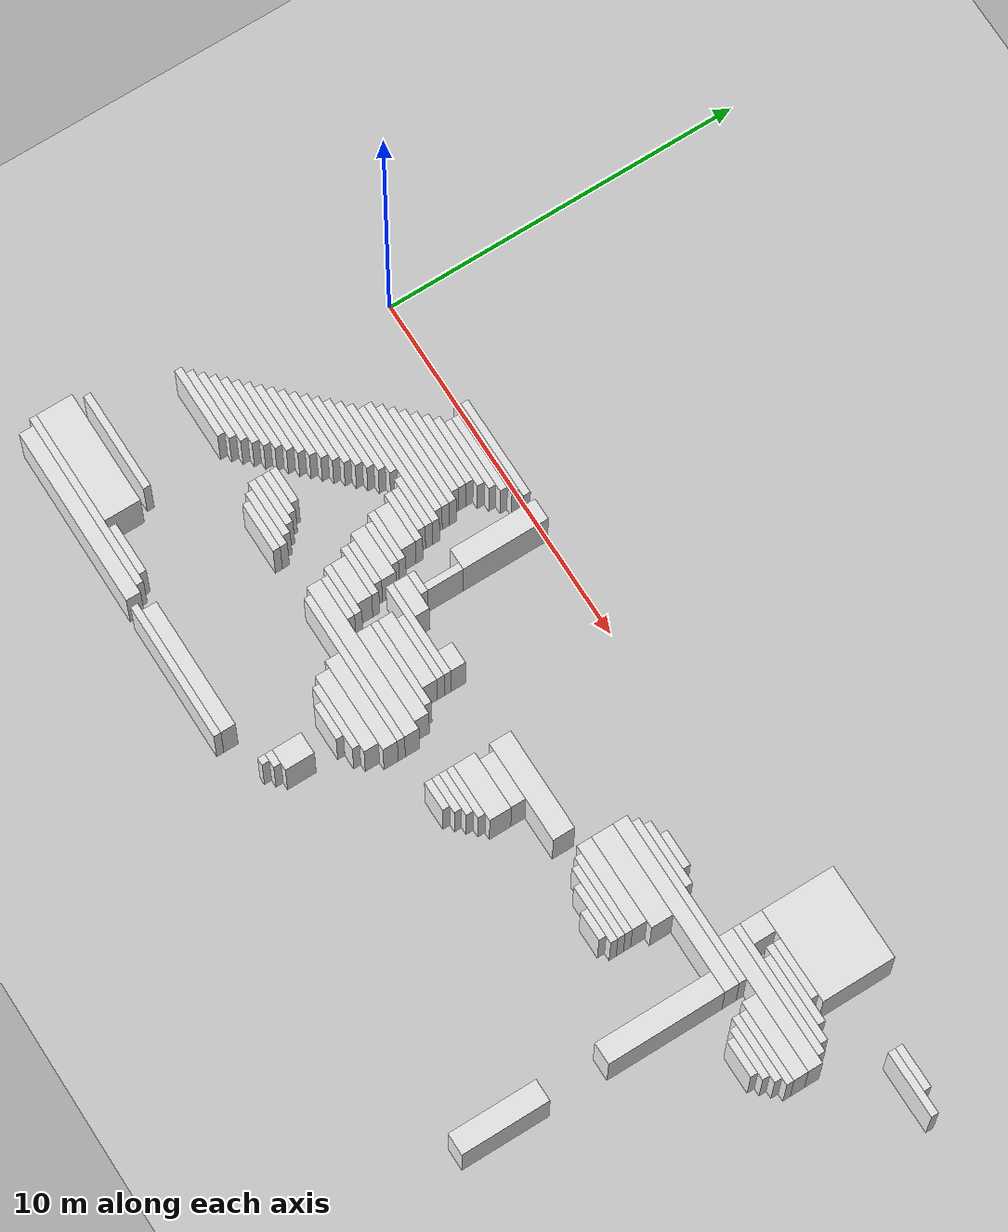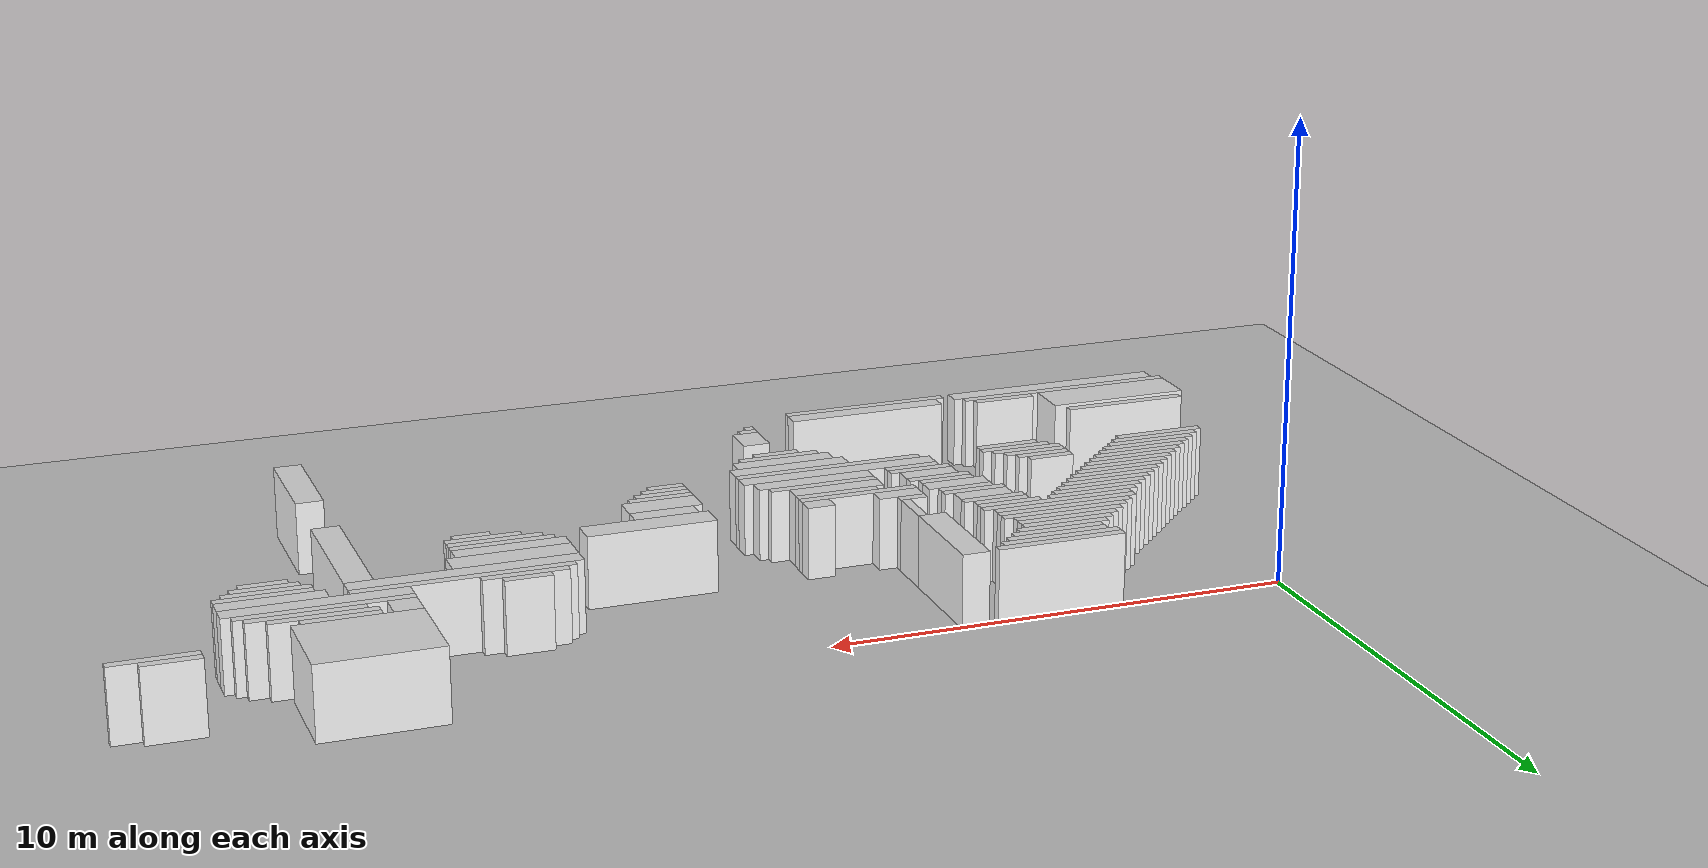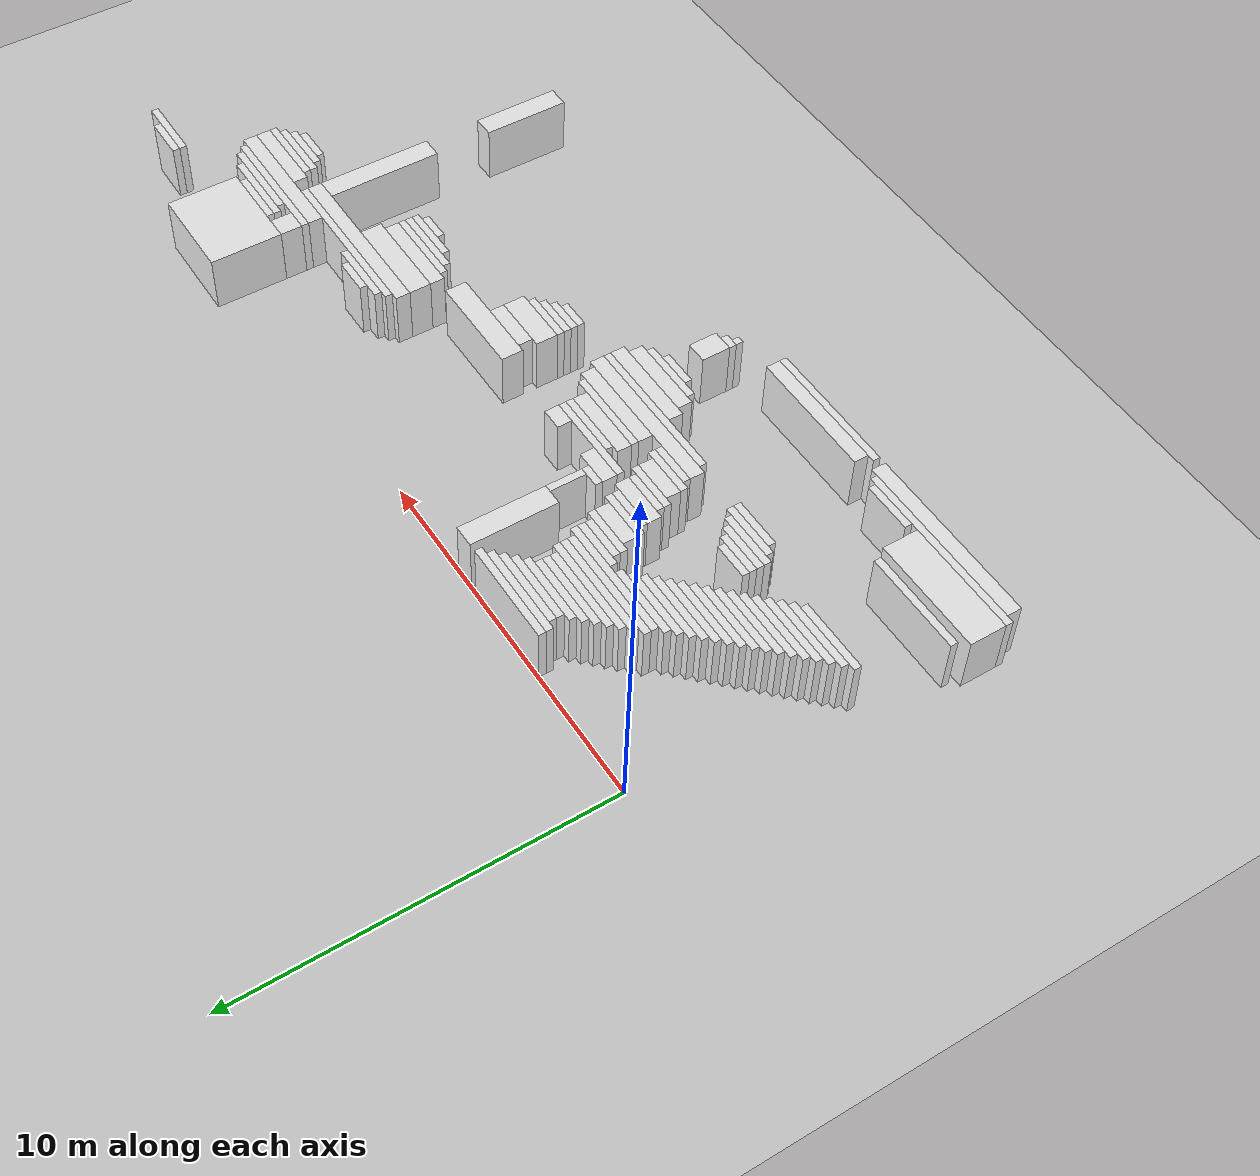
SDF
<sdf version="1.7">
 <world name="default">
  <model name="ground_plane">
   <static>1</static>
   <link name="link">
    <collision name="collision">
     <geometry><plane><normal>0 0 1</normal><size>120 120</size></plane></geometry>
    </collision>
    <visual name="visual">
     <geometry><plane><normal>0 0 1</normal><size>120 120</size></plane></geometry>
     <material>
      <script><uri>file://media/materials/scripts/gazebo.material</uri><name>Gazebo/Grey</name></script>
     </material>
    </visual>
   </link>
  </model>
  <model name="random_complex_02_model">
   <static>1</static>
   <link name="obs_1975">
    <pose>5.0000 -0.1000 0.8000 0 0 0</pose>
    <collision name="obs_1975_col"><geometry><box><size>2.8000 0.2000 1.6000</size></box></geometry></collision>
    <visual name="obs_1975_vis">
     <geometry><box><size>2.8000 0.2000 1.6000</size></box></geometry>
     <material>
      <script><uri>file://media/materials/scripts/gazebo.material</uri><name>Gazebo/White</name></script>
     </material>
    </visual>
   </link>
   <link name="obs_1976">
    <pose>23.0000 -0.1000 0.8000 0 0 0</pose>
    <collision name="obs_1976_col"><geometry><box><size>1.2000 0.2000 1.6000</size></box></geometry></collision>
    <visual name="obs_1976_vis">
     <geometry><box><size>1.2000 0.2000 1.6000</size></box></geometry>
     <material>
      <script><uri>file://media/materials/scripts/gazebo.material</uri><name>Gazebo/White</name></script>
     </material>
    </visual>
   </link>
   <link name="obs_1982">
    <pose>4.9000 -0.3000 0.8000 0 0 0</pose>
    <collision name="obs_1982_col"><geometry><box><size>2.6000 0.2000 1.6000</size></box></geometry></collision>
    <visual name="obs_1982_vis">
     <geometry><box><size>2.6000 0.2000 1.6000</size></box></geometry>
     <material>
      <script><uri>file://media/materials/scripts/gazebo.material</uri><name>Gazebo/White</name></script>
     </material>
    </visual>
   </link>
   <link name="obs_1983">
    <pose>23.3000 -0.3000 0.8000 0 0 0</pose>
    <collision name="obs_1983_col"><geometry><box><size>1.8000 0.2000 1.6000</size></box></geometry></collision>
    <visual name="obs_1983_vis">
     <geometry><box><size>1.8000 0.2000 1.6000</size></box></geometry>
     <material>
      <script><uri>file://media/materials/scripts/gazebo.material</uri><name>Gazebo/White</name></script>
     </material>
    </visual>
   </link>
   <link name="obs_1990">
    <pose>4.9000 -0.5000 0.8000 0 0 0</pose>
    <collision name="obs_1990_col"><geometry><box><size>2.2000 0.2000 1.6000</size></box></geometry></collision>
    <visual name="obs_1990_vis">
     <geometry><box><size>2.2000 0.2000 1.6000</size></box></geometry>
     <material>
      <script><uri>file://media/materials/scripts/gazebo.material</uri><name>Gazebo/White</name></script>
     </material>
    </visual>
   </link>
   <link name="obs_1998">
    <pose>4.8000 -0.7000 0.8000 0 0 0</pose>
    <collision name="obs_1998_col"><geometry><box><size>2.0000 0.2000 1.6000</size></box></geometry></collision>
    <visual name="obs_1998_vis">
     <geometry><box><size>2.0000 0.2000 1.6000</size></box></geometry>
     <material>
      <script><uri>file://media/materials/scripts/gazebo.material</uri><name>Gazebo/White</name></script>
     </material>
    </visual>
   </link>
   <link name="obs_2003">
    <pose>19.3000 0.0000 0.8000 0 0 0</pose>
    <collision name="obs_2003_col"><geometry><box><size>2.6000 2.0000 1.6000</size></box></geometry></collision>
    <visual name="obs_2003_vis">
     <geometry><box><size>2.6000 2.0000 1.6000</size></box></geometry>
     <material>
      <script><uri>file://media/materials/scripts/gazebo.material</uri><name>Gazebo/White</name></script>
     </material>
    </visual>
   </link>
   <link name="obs_2010">
    <pose>4.6000 -0.9000 0.8000 0 0 0</pose>
    <collision name="obs_2010_col"><geometry><box><size>2.0000 0.2000 1.6000</size></box></geometry></collision>
    <visual name="obs_2010_vis">
     <geometry><box><size>2.0000 0.2000 1.6000</size></box></geometry>
     <material>
      <script><uri>file://media/materials/scripts/gazebo.material</uri><name>Gazebo/White</name></script>
     </material>
    </visual>
   </link>
   <link name="obs_2018">
    <pose>4.4000 -1.1000 0.8000 0 0 0</pose>
    <collision name="obs_2018_col"><geometry><box><size>2.0000 0.2000 1.6000</size></box></geometry></collision>
    <visual name="obs_2018_vis">
     <geometry><box><size>2.0000 0.2000 1.6000</size></box></geometry>
     <material>
      <script><uri>file://media/materials/scripts/gazebo.material</uri><name>Gazebo/White</name></script>
     </material>
    </visual>
   </link>
   <link name="obs_2019">
    <pose>19.6000 -1.1000 0.8000 0 0 0</pose>
    <collision name="obs_2019_col"><geometry><box><size>1.6000 0.2000 1.6000</size></box></geometry></collision>
    <visual name="obs_2019_vis">
     <geometry><box><size>1.6000 0.2000 1.6000</size></box></geometry>
     <material>
      <script><uri>file://media/materials/scripts/gazebo.material</uri><name>Gazebo/White</name></script>
     </material>
    </visual>
   </link>
   <link name="obs_2029">
    <pose>4.3000 -1.3000 0.8000 0 0 0</pose>
    <collision name="obs_2029_col"><geometry><box><size>2.2000 0.2000 1.6000</size></box></geometry></collision>
    <visual name="obs_2029_vis">
     <geometry><box><size>2.2000 0.2000 1.6000</size></box></geometry>
     <material>
      <script><uri>file://media/materials/scripts/gazebo.material</uri><name>Gazebo/White</name></script>
     </material>
    </visual>
   </link>
   <link name="obs_2030">
    <pose>19.9000 -1.3000 0.8000 0 0 0</pose>
    <collision name="obs_2030_col"><geometry><box><size>2.2000 0.2000 1.6000</size></box></geometry></collision>
    <visual name="obs_2030_vis">
     <geometry><box><size>2.2000 0.2000 1.6000</size></box></geometry>
     <material>
      <script><uri>file://media/materials/scripts/gazebo.material</uri><name>Gazebo/White</name></script>
     </material>
    </visual>
   </link>
   <link name="obs_2037">
    <pose>18.3000 -1.3000 0.8000 0 0 0</pose>
    <collision name="obs_2037_col"><geometry><box><size>0.6000 0.6000 1.6000</size></box></geometry></collision>
    <visual name="obs_2037_vis">
     <geometry><box><size>0.6000 0.6000 1.6000</size></box></geometry>
     <material>
      <script><uri>file://media/materials/scripts/gazebo.material</uri><name>Gazebo/White</name></script>
     </material>
    </visual>
   </link>
   <link name="obs_2039">
    <pose>4.2000 -1.5000 0.8000 0 0 0</pose>
    <collision name="obs_2039_col"><geometry><box><size>2.4000 0.2000 1.6000</size></box></geometry></collision>
    <visual name="obs_2039_vis">
     <geometry><box><size>2.4000 0.2000 1.6000</size></box></geometry>
     <material>
      <script><uri>file://media/materials/scripts/gazebo.material</uri><name>Gazebo/White</name></script>
     </material>
    </visual>
   </link>
   <link name="obs_2040">
    <pose>20.2000 -1.5000 0.8000 0 0 0</pose>
    <collision name="obs_2040_col"><geometry><box><size>2.4000 0.2000 1.6000</size></box></geometry></collision>
    <visual name="obs_2040_vis">
     <geometry><box><size>2.4000 0.2000 1.6000</size></box></geometry>
     <material>
      <script><uri>file://media/materials/scripts/gazebo.material</uri><name>Gazebo/White</name></script>
     </material>
    </visual>
   </link>
   <link name="obs_2044">
    <pose>4.2000 -1.7000 0.8000 0 0 0</pose>
    <collision name="obs_2044_col"><geometry><box><size>2.8000 0.2000 1.6000</size></box></geometry></collision>
    <visual name="obs_2044_vis">
     <geometry><box><size>2.8000 0.2000 1.6000</size></box></geometry>
     <material>
      <script><uri>file://media/materials/scripts/gazebo.material</uri><name>Gazebo/White</name></script>
     </material>
    </visual>
   </link>
   <link name="obs_2045">
    <pose>19.8000 -1.7000 0.8000 0 0 0</pose>
    <collision name="obs_2045_col"><geometry><box><size>3.6000 0.2000 1.6000</size></box></geometry></collision>
    <visual name="obs_2045_vis">
     <geometry><box><size>3.6000 0.2000 1.6000</size></box></geometry>
     <material>
      <script><uri>file://media/materials/scripts/gazebo.material</uri><name>Gazebo/White</name></script>
     </material>
    </visual>
   </link>
   <link name="obs_2054">
    <pose>4.1000 -1.9000 0.8000 0 0 0</pose>
    <collision name="obs_2054_col"><geometry><box><size>3.0000 0.2000 1.6000</size></box></geometry></collision>
    <visual name="obs_2054_vis">
     <geometry><box><size>3.0000 0.2000 1.6000</size></box></geometry>
     <material>
      <script><uri>file://media/materials/scripts/gazebo.material</uri><name>Gazebo/White</name></script>
     </material>
    </visual>
   </link>
   <link name="obs_2055">
    <pose>15.7000 -1.9000 0.8000 0 0 0</pose>
    <collision name="obs_2055_col"><geometry><box><size>1.0000 0.2000 1.6000</size></box></geometry></collision>
    <visual name="obs_2055_vis">
     <geometry><box><size>1.0000 0.2000 1.6000</size></box></geometry>
     <material>
      <script><uri>file://media/materials/scripts/gazebo.material</uri><name>Gazebo/White</name></script>
     </material>
    </visual>
   </link>
   <link name="obs_2061">
    <pose>19.9000 -2.0000 0.8000 0 0 0</pose>
    <collision name="obs_2061_col"><geometry><box><size>3.8000 0.4000 1.6000</size></box></geometry></collision>
    <visual name="obs_2061_vis">
     <geometry><box><size>3.8000 0.4000 1.6000</size></box></geometry>
     <material>
      <script><uri>file://media/materials/scripts/gazebo.material</uri><name>Gazebo/White</name></script>
     </material>
    </visual>
   </link>
   <link name="obs_2064">
    <pose>4.0000 -2.1000 0.8000 0 0 0</pose>
    <collision name="obs_2064_col"><geometry><box><size>3.2000 0.2000 1.6000</size></box></geometry></collision>
    <visual name="obs_2064_vis">
     <geometry><box><size>3.2000 0.2000 1.6000</size></box></geometry>
     <material>
      <script><uri>file://media/materials/scripts/gazebo.material</uri><name>Gazebo/White</name></script>
     </material>
    </visual>
   </link>
   <link name="obs_2065">
    <pose>15.7000 -2.1000 0.8000 0 0 0</pose>
    <collision name="obs_2065_col"><geometry><box><size>1.8000 0.2000 1.6000</size></box></geometry></collision>
    <visual name="obs_2065_vis">
     <geometry><box><size>1.8000 0.2000 1.6000</size></box></geometry>
     <material>
      <script><uri>file://media/materials/scripts/gazebo.material</uri><name>Gazebo/White</name></script>
     </material>
    </visual>
   </link>
   <link name="obs_2069">
    <pose>6.9000 -1.2000 0.8000 0 0 0</pose>
    <collision name="obs_2069_col"><geometry><box><size>0.6000 2.4000 1.6000</size></box></geometry></collision>
    <visual name="obs_2069_vis">
     <geometry><box><size>0.6000 2.4000 1.6000</size></box></geometry>
     <material>
      <script><uri>file://media/materials/scripts/gazebo.material</uri><name>Gazebo/White</name></script>
     </material>
    </visual>
   </link>
   <link name="obs_2071">
    <pose>4.1000 -2.3000 0.8000 0 0 0</pose>
    <collision name="obs_2071_col"><geometry><box><size>3.4000 0.2000 1.6000</size></box></geometry></collision>
    <visual name="obs_2071_vis">
     <geometry><box><size>3.4000 0.2000 1.6000</size></box></geometry>
     <material>
      <script><uri>file://media/materials/scripts/gazebo.material</uri><name>Gazebo/White</name></script>
     </material>
    </visual>
   </link>
   <link name="obs_2072">
    <pose>16.9000 -2.3000 0.8000 0 0 0</pose>
    <collision name="obs_2072_col"><geometry><box><size>4.6000 0.2000 1.6000</size></box></geometry></collision>
    <visual name="obs_2072_vis">
     <geometry><box><size>4.6000 0.2000 1.6000</size></box></geometry>
     <material>
      <script><uri>file://media/materials/scripts/gazebo.material</uri><name>Gazebo/White</name></script>
     </material>
    </visual>
   </link>
   <link name="obs_2076">
    <pose>20.7000 -2.4000 0.8000 0 0 0</pose>
    <collision name="obs_2076_col"><geometry><box><size>2.2000 0.4000 1.6000</size></box></geometry></collision>
    <visual name="obs_2076_vis">
     <geometry><box><size>2.2000 0.4000 1.6000</size></box></geometry>
     <material>
      <script><uri>file://media/materials/scripts/gazebo.material</uri><name>Gazebo/White</name></script>
     </material>
    </visual>
   </link>
   <link name="obs_2079">
    <pose>3.2000 -2.5000 0.8000 0 0 0</pose>
    <collision name="obs_2079_col"><geometry><box><size>2.0000 0.2000 1.6000</size></box></geometry></collision>
    <visual name="obs_2079_vis">
     <geometry><box><size>2.0000 0.2000 1.6000</size></box></geometry>
     <material>
      <script><uri>file://media/materials/scripts/gazebo.material</uri><name>Gazebo/White</name></script>
     </material>
    </visual>
   </link>
   <link name="obs_2080">
    <pose>5.1000 -2.5000 0.8000 0 0 0</pose>
    <collision name="obs_2080_col"><geometry><box><size>1.4000 0.2000 1.6000</size></box></geometry></collision>
    <visual name="obs_2080_vis">
     <geometry><box><size>1.4000 0.2000 1.6000</size></box></geometry>
     <material>
      <script><uri>file://media/materials/scripts/gazebo.material</uri><name>Gazebo/White</name></script>
     </material>
    </visual>
   </link>
   <link name="obs_2084">
    <pose>16.8000 -2.6000 0.8000 0 0 0</pose>
    <collision name="obs_2084_col"><geometry><box><size>4.8000 0.4000 1.6000</size></box></geometry></collision>
    <visual name="obs_2084_vis">
     <geometry><box><size>4.8000 0.4000 1.6000</size></box></geometry>
     <material>
      <script><uri>file://media/materials/scripts/gazebo.material</uri><name>Gazebo/White</name></script>
     </material>
    </visual>
   </link>
   <link name="obs_2087">
    <pose>3.0000 -2.7000 0.8000 0 0 0</pose>
    <collision name="obs_2087_col"><geometry><box><size>2.0000 0.2000 1.6000</size></box></geometry></collision>
    <visual name="obs_2087_vis">
     <geometry><box><size>2.0000 0.2000 1.6000</size></box></geometry>
     <material>
      <script><uri>file://media/materials/scripts/gazebo.material</uri><name>Gazebo/White</name></script>
     </material>
    </visual>
   </link>
   <link name="obs_2088">
    <pose>5.2000 -2.7000 0.8000 0 0 0</pose>
    <collision name="obs_2088_col"><geometry><box><size>1.2000 0.2000 1.6000</size></box></geometry></collision>
    <visual name="obs_2088_vis">
     <geometry><box><size>1.2000 0.2000 1.6000</size></box></geometry>
     <material>
      <script><uri>file://media/materials/scripts/gazebo.material</uri><name>Gazebo/White</name></script>
     </material>
    </visual>
   </link>
   <link name="obs_2089">
    <pose>20.8000 -2.7000 0.8000 0 0 0</pose>
    <collision name="obs_2089_col"><geometry><box><size>2.0000 0.2000 1.6000</size></box></geometry></collision>
    <visual name="obs_2089_vis">
     <geometry><box><size>2.0000 0.2000 1.6000</size></box></geometry>
     <material>
      <script><uri>file://media/materials/scripts/gazebo.material</uri><name>Gazebo/White</name></script>
     </material>
    </visual>
   </link>
   <link name="obs_2092">
    <pose>2.8000 -2.9000 0.8000 0 0 0</pose>
    <collision name="obs_2092_col"><geometry><box><size>2.0000 0.2000 1.6000</size></box></geometry></collision>
    <visual name="obs_2092_vis">
     <geometry><box><size>2.0000 0.2000 1.6000</size></box></geometry>
     <material>
      <script><uri>file://media/materials/scripts/gazebo.material</uri><name>Gazebo/White</name></script>
     </material>
    </visual>
   </link>
   <link name="obs_2093">
    <pose>5.3000 -2.9000 0.8000 0 0 0</pose>
    <collision name="obs_2093_col"><geometry><box><size>1.4000 0.2000 1.6000</size></box></geometry></collision>
    <visual name="obs_2093_vis">
     <geometry><box><size>1.4000 0.2000 1.6000</size></box></geometry>
     <material>
      <script><uri>file://media/materials/scripts/gazebo.material</uri><name>Gazebo/White</name></script>
     </material>
    </visual>
   </link>
   <link name="obs_2094">
    <pose>20.7000 -2.9000 0.8000 0 0 0</pose>
    <collision name="obs_2094_col"><geometry><box><size>1.8000 0.2000 1.6000</size></box></geometry></collision>
    <visual name="obs_2094_vis">
     <geometry><box><size>1.8000 0.2000 1.6000</size></box></geometry>
     <material>
      <script><uri>file://media/materials/scripts/gazebo.material</uri><name>Gazebo/White</name></script>
     </material>
    </visual>
   </link>
   <link name="obs_2099">
    <pose>2.6000 -3.1000 0.8000 0 0 0</pose>
    <collision name="obs_2099_col"><geometry><box><size>2.0000 0.2000 1.6000</size></box></geometry></collision>
    <visual name="obs_2099_vis">
     <geometry><box><size>2.0000 0.2000 1.6000</size></box></geometry>
     <material>
      <script><uri>file://media/materials/scripts/gazebo.material</uri><name>Gazebo/White</name></script>
     </material>
    </visual>
   </link>
   <link name="obs_2100">
    <pose>20.7000 -3.1000 0.8000 0 0 0</pose>
    <collision name="obs_2100_col"><geometry><box><size>1.4000 0.2000 1.6000</size></box></geometry></collision>
    <visual name="obs_2100_vis">
     <geometry><box><size>1.4000 0.2000 1.6000</size></box></geometry>
     <material>
      <script><uri>file://media/materials/scripts/gazebo.material</uri><name>Gazebo/White</name></script>
     </material>
    </visual>
   </link>
   <link name="obs_2104">
    <pose>7.1000 -2.9000 0.8000 0 0 0</pose>
    <collision name="obs_2104_col"><geometry><box><size>0.2000 1.0000 1.6000</size></box></geometry></collision>
    <visual name="obs_2104_vis">
     <geometry><box><size>0.2000 1.0000 1.6000</size></box></geometry>
     <material>
      <script><uri>file://media/materials/scripts/gazebo.material</uri><name>Gazebo/White</name></script>
     </material>
    </visual>
   </link>
   <link name="obs_2105">
    <pose>15.7000 -3.1000 0.8000 0 0 0</pose>
    <collision name="obs_2105_col"><geometry><box><size>2.6000 0.6000 1.6000</size></box></geometry></collision>
    <visual name="obs_2105_vis">
     <geometry><box><size>2.6000 0.6000 1.6000</size></box></geometry>
     <material>
      <script><uri>file://media/materials/scripts/gazebo.material</uri><name>Gazebo/White</name></script>
     </material>
    </visual>
   </link>
   <link name="obs_2106">
    <pose>5.4000 -3.2000 0.8000 0 0 0</pose>
    <collision name="obs_2106_col"><geometry><box><size>1.2000 0.4000 1.6000</size></box></geometry></collision>
    <visual name="obs_2106_vis">
     <geometry><box><size>1.2000 0.4000 1.6000</size></box></geometry>
     <material>
      <script><uri>file://media/materials/scripts/gazebo.material</uri><name>Gazebo/White</name></script>
     </material>
    </visual>
   </link>
   <link name="obs_2109">
    <pose>2.4000 -3.3000 0.8000 0 0 0</pose>
    <collision name="obs_2109_col"><geometry><box><size>2.0000 0.2000 1.6000</size></box></geometry></collision>
    <visual name="obs_2109_vis">
     <geometry><box><size>2.0000 0.2000 1.6000</size></box></geometry>
     <material>
      <script><uri>file://media/materials/scripts/gazebo.material</uri><name>Gazebo/White</name></script>
     </material>
    </visual>
   </link>
   <link name="obs_2110">
    <pose>20.7000 -3.3000 0.8000 0 0 0</pose>
    <collision name="obs_2110_col"><geometry><box><size>1.0000 0.2000 1.6000</size></box></geometry></collision>
    <visual name="obs_2110_vis">
     <geometry><box><size>1.0000 0.2000 1.6000</size></box></geometry>
     <material>
      <script><uri>file://media/materials/scripts/gazebo.material</uri><name>Gazebo/White</name></script>
     </material>
    </visual>
   </link>
   <link name="obs_2117">
    <pose>2.2000 -3.5000 0.8000 0 0 0</pose>
    <collision name="obs_2117_col"><geometry><box><size>2.0000 0.2000 1.6000</size></box></geometry></collision>
    <visual name="obs_2117_vis">
     <geometry><box><size>2.0000 0.2000 1.6000</size></box></geometry>
     <material>
      <script><uri>file://media/materials/scripts/gazebo.material</uri><name>Gazebo/White</name></script>
     </material>
    </visual>
   </link>
   <link name="obs_2118">
    <pose>5.5000 -3.5000 0.8000 0 0 0</pose>
    <collision name="obs_2118_col"><geometry><box><size>1.4000 0.2000 1.6000</size></box></geometry></collision>
    <visual name="obs_2118_vis">
     <geometry><box><size>1.4000 0.2000 1.6000</size></box></geometry>
     <material>
      <script><uri>file://media/materials/scripts/gazebo.material</uri><name>Gazebo/White</name></script>
     </material>
    </visual>
   </link>
   <link name="obs_2119">
    <pose>6.9000 -3.5000 0.8000 0 0 0</pose>
    <collision name="obs_2119_col"><geometry><box><size>0.6000 0.2000 1.6000</size></box></geometry></collision>
    <visual name="obs_2119_vis">
     <geometry><box><size>0.6000 0.2000 1.6000</size></box></geometry>
     <material>
      <script><uri>file://media/materials/scripts/gazebo.material</uri><name>Gazebo/White</name></script>
     </material>
    </visual>
   </link>
   <link name="obs_2123">
    <pose>15.6000 -3.6000 0.8000 0 0 0</pose>
    <collision name="obs_2123_col"><geometry><box><size>2.4000 0.4000 1.6000</size></box></geometry></collision>
    <visual name="obs_2123_vis">
     <geometry><box><size>2.4000 0.4000 1.6000</size></box></geometry>
     <material>
      <script><uri>file://media/materials/scripts/gazebo.material</uri><name>Gazebo/White</name></script>
     </material>
    </visual>
   </link>
   <link name="obs_2128">
    <pose>2.0000 -3.7000 0.8000 0 0 0</pose>
    <collision name="obs_2128_col"><geometry><box><size>2.0000 0.2000 1.6000</size></box></geometry></collision>
    <visual name="obs_2128_vis">
     <geometry><box><size>2.0000 0.2000 1.6000</size></box></geometry>
     <material>
      <script><uri>file://media/materials/scripts/gazebo.material</uri><name>Gazebo/White</name></script>
     </material>
    </visual>
   </link>
   <link name="obs_2129">
    <pose>5.6000 -3.7000 0.8000 0 0 0</pose>
    <collision name="obs_2129_col"><geometry><box><size>1.2000 0.2000 1.6000</size></box></geometry></collision>
    <visual name="obs_2129_vis">
     <geometry><box><size>1.2000 0.2000 1.6000</size></box></geometry>
     <material>
      <script><uri>file://media/materials/scripts/gazebo.material</uri><name>Gazebo/White</name></script>
     </material>
    </visual>
   </link>
   <link name="obs_2134">
    <pose>7.1000 -3.8000 0.8000 0 0 0</pose>
    <collision name="obs_2134_col"><geometry><box><size>1.0000 0.4000 1.6000</size></box></geometry></collision>
    <visual name="obs_2134_vis">
     <geometry><box><size>1.0000 0.4000 1.6000</size></box></geometry>
     <material>
      <script><uri>file://media/materials/scripts/gazebo.material</uri><name>Gazebo/White</name></script>
     </material>
    </visual>
   </link>
   <link name="obs_2135">
    <pose>8.9000 -3.8000 0.8000 0 0 0</pose>
    <collision name="obs_2135_col"><geometry><box><size>0.6000 0.4000 1.6000</size></box></geometry></collision>
    <visual name="obs_2135_vis">
     <geometry><box><size>0.6000 0.4000 1.6000</size></box></geometry>
     <material>
      <script><uri>file://media/materials/scripts/gazebo.material</uri><name>Gazebo/White</name></script>
     </material>
    </visual>
   </link>
   <link name="obs_2138">
    <pose>1.8000 -3.9000 0.8000 0 0 0</pose>
    <collision name="obs_2138_col"><geometry><box><size>2.0000 0.2000 1.6000</size></box></geometry></collision>
    <visual name="obs_2138_vis">
     <geometry><box><size>2.0000 0.2000 1.6000</size></box></geometry>
     <material>
      <script><uri>file://media/materials/scripts/gazebo.material</uri><name>Gazebo/White</name></script>
     </material>
    </visual>
   </link>
   <link name="obs_2139">
    <pose>15.7000 -3.9000 0.8000 0 0 0</pose>
    <collision name="obs_2139_col"><geometry><box><size>2.2000 0.2000 1.6000</size></box></geometry></collision>
    <visual name="obs_2139_vis">
     <geometry><box><size>2.2000 0.2000 1.6000</size></box></geometry>
     <material>
      <script><uri>file://media/materials/scripts/gazebo.material</uri><name>Gazebo/White</name></script>
     </material>
    </visual>
   </link>
   <link name="obs_2144">
    <pose>12.6000 -3.9000 0.8000 0 0 0</pose>
    <collision name="obs_2144_col"><geometry><box><size>2.8000 0.6000 1.6000</size></box></geometry></collision>
    <visual name="obs_2144_vis">
     <geometry><box><size>2.8000 0.6000 1.6000</size></box></geometry>
     <material>
      <script><uri>file://media/materials/scripts/gazebo.material</uri><name>Gazebo/White</name></script>
     </material>
    </visual>
   </link>
   <link name="obs_2145">
    <pose>5.7000 -4.0000 0.8000 0 0 0</pose>
    <collision name="obs_2145_col"><geometry><box><size>1.4000 0.4000 1.6000</size></box></geometry></collision>
    <visual name="obs_2145_vis">
     <geometry><box><size>1.4000 0.4000 1.6000</size></box></geometry>
     <material>
      <script><uri>file://media/materials/scripts/gazebo.material</uri><name>Gazebo/White</name></script>
     </material>
    </visual>
   </link>
   <link name="obs_2148">
    <pose>1.6000 -4.1000 0.8000 0 0 0</pose>
    <collision name="obs_2148_col"><geometry><box><size>2.0000 0.2000 1.6000</size></box></geometry></collision>
    <visual name="obs_2148_vis">
     <geometry><box><size>2.0000 0.2000 1.6000</size></box></geometry>
     <material>
      <script><uri>file://media/materials/scripts/gazebo.material</uri><name>Gazebo/White</name></script>
     </material>
    </visual>
   </link>
   <link name="obs_2149">
    <pose>7.9000 -4.1000 0.8000 0 0 0</pose>
    <collision name="obs_2149_col"><geometry><box><size>2.6000 0.2000 1.6000</size></box></geometry></collision>
    <visual name="obs_2149_vis">
     <geometry><box><size>2.6000 0.2000 1.6000</size></box></geometry>
     <material>
      <script><uri>file://media/materials/scripts/gazebo.material</uri><name>Gazebo/White</name></script>
     </material>
    </visual>
   </link>
   <link name="obs_2150">
    <pose>15.8000 -4.1000 0.8000 0 0 0</pose>
    <collision name="obs_2150_col"><geometry><box><size>2.0000 0.2000 1.6000</size></box></geometry></collision>
    <visual name="obs_2150_vis">
     <geometry><box><size>2.0000 0.2000 1.6000</size></box></geometry>
     <material>
      <script><uri>file://media/materials/scripts/gazebo.material</uri><name>Gazebo/White</name></script>
     </material>
    </visual>
   </link>
   <link name="obs_2157">
    <pose>1.4000 -4.3000 0.8000 0 0 0</pose>
    <collision name="obs_2157_col"><geometry><box><size>2.0000 0.2000 1.6000</size></box></geometry></collision>
    <visual name="obs_2157_vis">
     <geometry><box><size>2.0000 0.2000 1.6000</size></box></geometry>
     <material>
      <script><uri>file://media/materials/scripts/gazebo.material</uri><name>Gazebo/White</name></script>
     </material>
    </visual>
   </link>
   <link name="obs_2158">
    <pose>5.8000 -4.3000 0.8000 0 0 0</pose>
    <collision name="obs_2158_col"><geometry><box><size>1.2000 0.2000 1.6000</size></box></geometry></collision>
    <visual name="obs_2158_vis">
     <geometry><box><size>1.2000 0.2000 1.6000</size></box></geometry>
     <material>
      <script><uri>file://media/materials/scripts/gazebo.material</uri><name>Gazebo/White</name></script>
     </material>
    </visual>
   </link>
   <link name="obs_2159">
    <pose>8.3000 -4.3000 0.8000 0 0 0</pose>
    <collision name="obs_2159_col"><geometry><box><size>1.8000 0.2000 1.6000</size></box></geometry></collision>
    <visual name="obs_2159_vis">
     <geometry><box><size>1.8000 0.2000 1.6000</size></box></geometry>
     <material>
      <script><uri>file://media/materials/scripts/gazebo.material</uri><name>Gazebo/White</name></script>
     </material>
    </visual>
   </link>
   <link name="obs_2160">
    <pose>16.0000 -4.3000 0.8000 0 0 0</pose>
    <collision name="obs_2160_col"><geometry><box><size>1.6000 0.2000 1.6000</size></box></geometry></collision>
    <visual name="obs_2160_vis">
     <geometry><box><size>1.6000 0.2000 1.6000</size></box></geometry>
     <material>
      <script><uri>file://media/materials/scripts/gazebo.material</uri><name>Gazebo/White</name></script>
     </material>
    </visual>
   </link>
   <link name="obs_2166">
    <pose>12.1000 -4.4000 0.8000 0 0 0</pose>
    <collision name="obs_2166_col"><geometry><box><size>1.4000 0.4000 1.6000</size></box></geometry></collision>
    <visual name="obs_2166_vis">
     <geometry><box><size>1.4000 0.4000 1.6000</size></box></geometry>
     <material>
      <script><uri>file://media/materials/scripts/gazebo.material</uri><name>Gazebo/White</name></script>
     </material>
    </visual>
   </link>
   <link name="obs_2167">
    <pose>1.2000 -4.5000 0.8000 0 0 0</pose>
    <collision name="obs_2167_col"><geometry><box><size>2.0000 0.2000 1.6000</size></box></geometry></collision>
    <visual name="obs_2167_vis">
     <geometry><box><size>2.0000 0.2000 1.6000</size></box></geometry>
     <material>
      <script><uri>file://media/materials/scripts/gazebo.material</uri><name>Gazebo/White</name></script>
     </material>
    </visual>
   </link>
   <link name="obs_2168">
    <pose>5.9000 -4.5000 0.8000 0 0 0</pose>
    <collision name="obs_2168_col"><geometry><box><size>1.4000 0.2000 1.6000</size></box></geometry></collision>
    <visual name="obs_2168_vis">
     <geometry><box><size>1.4000 0.2000 1.6000</size></box></geometry>
     <material>
      <script><uri>file://media/materials/scripts/gazebo.material</uri><name>Gazebo/White</name></script>
     </material>
    </visual>
   </link>
   <link name="obs_2169">
    <pose>16.2000 -4.5000 0.8000 0 0 0</pose>
    <collision name="obs_2169_col"><geometry><box><size>0.8000 0.2000 1.6000</size></box></geometry></collision>
    <visual name="obs_2169_vis">
     <geometry><box><size>0.8000 0.2000 1.6000</size></box></geometry>
     <material>
      <script><uri>file://media/materials/scripts/gazebo.material</uri><name>Gazebo/White</name></script>
     </material>
    </visual>
   </link>
   <link name="obs_2172">
    <pose>8.2000 -4.6000 0.8000 0 0 0</pose>
    <collision name="obs_2172_col"><geometry><box><size>2.0000 0.4000 1.6000</size></box></geometry></collision>
    <visual name="obs_2172_vis">
     <geometry><box><size>2.0000 0.4000 1.6000</size></box></geometry>
     <material>
      <script><uri>file://media/materials/scripts/gazebo.material</uri><name>Gazebo/White</name></script>
     </material>
    </visual>
   </link>
   <link name="obs_2174">
    <pose>1.0000 -4.7000 0.8000 0 0 0</pose>
    <collision name="obs_2174_col"><geometry><box><size>2.0000 0.2000 1.6000</size></box></geometry></collision>
    <visual name="obs_2174_vis">
     <geometry><box><size>2.0000 0.2000 1.6000</size></box></geometry>
     <material>
      <script><uri>file://media/materials/scripts/gazebo.material</uri><name>Gazebo/White</name></script>
     </material>
    </visual>
   </link>
   <link name="obs_2178">
    <pose>6.0000 -4.8000 0.8000 0 0 0</pose>
    <collision name="obs_2178_col"><geometry><box><size>1.2000 0.4000 1.6000</size></box></geometry></collision>
    <visual name="obs_2178_vis">
     <geometry><box><size>1.2000 0.4000 1.6000</size></box></geometry>
     <material>
      <script><uri>file://media/materials/scripts/gazebo.material</uri><name>Gazebo/White</name></script>
     </material>
    </visual>
   </link>
   <link name="obs_2181">
    <pose>0.8000 -4.9000 0.8000 0 0 0</pose>
    <collision name="obs_2181_col"><geometry><box><size>2.0000 0.2000 1.6000</size></box></geometry></collision>
    <visual name="obs_2181_vis">
     <geometry><box><size>2.0000 0.2000 1.6000</size></box></geometry>
     <material>
      <script><uri>file://media/materials/scripts/gazebo.material</uri><name>Gazebo/White</name></script>
     </material>
    </visual>
   </link>
   <link name="obs_2182">
    <pose>3.1000 -4.9000 0.8000 0 0 0</pose>
    <collision name="obs_2182_col"><geometry><box><size>1.0000 0.2000 1.6000</size></box></geometry></collision>
    <visual name="obs_2182_vis">
     <geometry><box><size>1.0000 0.2000 1.6000</size></box></geometry>
     <material>
      <script><uri>file://media/materials/scripts/gazebo.material</uri><name>Gazebo/White</name></script>
     </material>
    </visual>
   </link>
   <link name="obs_2183">
    <pose>8.4000 -4.9000 0.8000 0 0 0</pose>
    <collision name="obs_2183_col"><geometry><box><size>2.4000 0.2000 1.6000</size></box></geometry></collision>
    <visual name="obs_2183_vis">
     <geometry><box><size>2.4000 0.2000 1.6000</size></box></geometry>
     <material>
      <script><uri>file://media/materials/scripts/gazebo.material</uri><name>Gazebo/White</name></script>
     </material>
    </visual>
   </link>
   <link name="obs_2186">
    <pose>12.0000 -4.9000 0.8000 0 0 0</pose>
    <collision name="obs_2186_col"><geometry><box><size>1.6000 0.6000 1.6000</size></box></geometry></collision>
    <visual name="obs_2186_vis">
     <geometry><box><size>1.6000 0.6000 1.6000</size></box></geometry>
     <material>
      <script><uri>file://media/materials/scripts/gazebo.material</uri><name>Gazebo/White</name></script>
     </material>
    </visual>
   </link>
   <link name="obs_2188">
    <pose>0.6000 -5.1000 0.8000 0 0 0</pose>
    <collision name="obs_2188_col"><geometry><box><size>2.0000 0.2000 1.6000</size></box></geometry></collision>
    <visual name="obs_2188_vis">
     <geometry><box><size>2.0000 0.2000 1.6000</size></box></geometry>
     <material>
      <script><uri>file://media/materials/scripts/gazebo.material</uri><name>Gazebo/White</name></script>
     </material>
    </visual>
   </link>
   <link name="obs_2189">
    <pose>3.2000 -5.1000 0.8000 0 0 0</pose>
    <collision name="obs_2189_col"><geometry><box><size>1.2000 0.2000 1.6000</size></box></geometry></collision>
    <visual name="obs_2189_vis">
     <geometry><box><size>1.2000 0.2000 1.6000</size></box></geometry>
     <material>
      <script><uri>file://media/materials/scripts/gazebo.material</uri><name>Gazebo/White</name></script>
     </material>
    </visual>
   </link>
   <link name="obs_2190">
    <pose>6.1000 -5.1000 0.8000 0 0 0</pose>
    <collision name="obs_2190_col"><geometry><box><size>1.4000 0.2000 1.6000</size></box></geometry></collision>
    <visual name="obs_2190_vis">
     <geometry><box><size>1.4000 0.2000 1.6000</size></box></geometry>
     <material>
      <script><uri>file://media/materials/scripts/gazebo.material</uri><name>Gazebo/White</name></script>
     </material>
    </visual>
   </link>
   <link name="obs_2196">
    <pose>8.5000 -5.2000 0.8000 0 0 0</pose>
    <collision name="obs_2196_col"><geometry><box><size>2.6000 0.4000 1.6000</size></box></geometry></collision>
    <visual name="obs_2196_vis">
     <geometry><box><size>2.6000 0.4000 1.6000</size></box></geometry>
     <material>
      <script><uri>file://media/materials/scripts/gazebo.material</uri><name>Gazebo/White</name></script>
     </material>
    </visual>
   </link>
   <link name="obs_2198">
    <pose>0.4000 -5.3000 0.8000 0 0 0</pose>
    <collision name="obs_2198_col"><geometry><box><size>2.0000 0.2000 1.6000</size></box></geometry></collision>
    <visual name="obs_2198_vis">
     <geometry><box><size>2.0000 0.2000 1.6000</size></box></geometry>
     <material>
      <script><uri>file://media/materials/scripts/gazebo.material</uri><name>Gazebo/White</name></script>
     </material>
    </visual>
   </link>
   <link name="obs_2199">
    <pose>3.3000 -5.3000 0.8000 0 0 0</pose>
    <collision name="obs_2199_col"><geometry><box><size>1.4000 0.2000 1.6000</size></box></geometry></collision>
    <visual name="obs_2199_vis">
     <geometry><box><size>1.4000 0.2000 1.6000</size></box></geometry>
     <material>
      <script><uri>file://media/materials/scripts/gazebo.material</uri><name>Gazebo/White</name></script>
     </material>
    </visual>
   </link>
   <link name="obs_2200">
    <pose>6.2000 -5.3000 0.8000 0 0 0</pose>
    <collision name="obs_2200_col"><geometry><box><size>1.2000 0.2000 1.6000</size></box></geometry></collision>
    <visual name="obs_2200_vis">
     <geometry><box><size>1.2000 0.2000 1.6000</size></box></geometry>
     <material>
      <script><uri>file://media/materials/scripts/gazebo.material</uri><name>Gazebo/White</name></script>
     </material>
    </visual>
   </link>
   <link name="obs_2201">
    <pose>11.9000 -5.3000 0.8000 0 0 0</pose>
    <collision name="obs_2201_col"><geometry><box><size>1.4000 0.2000 1.6000</size></box></geometry></collision>
    <visual name="obs_2201_vis">
     <geometry><box><size>1.4000 0.2000 1.6000</size></box></geometry>
     <material>
      <script><uri>file://media/materials/scripts/gazebo.material</uri><name>Gazebo/White</name></script>
     </material>
    </visual>
   </link>
   <link name="obs_2208">
    <pose>0.2000 -5.5000 0.8000 0 0 0</pose>
    <collision name="obs_2208_col"><geometry><box><size>2.0000 0.2000 1.6000</size></box></geometry></collision>
    <visual name="obs_2208_vis">
     <geometry><box><size>2.0000 0.2000 1.6000</size></box></geometry>
     <material>
      <script><uri>file://media/materials/scripts/gazebo.material</uri><name>Gazebo/White</name></script>
     </material>
    </visual>
   </link>
   <link name="obs_2209">
    <pose>3.4000 -5.5000 0.8000 0 0 0</pose>
    <collision name="obs_2209_col"><geometry><box><size>1.6000 0.2000 1.6000</size></box></geometry></collision>
    <visual name="obs_2209_vis">
     <geometry><box><size>1.6000 0.2000 1.6000</size></box></geometry>
     <material>
      <script><uri>file://media/materials/scripts/gazebo.material</uri><name>Gazebo/White</name></script>
     </material>
    </visual>
   </link>
   <link name="obs_2210">
    <pose>11.8000 -5.5000 0.8000 0 0 0</pose>
    <collision name="obs_2210_col"><geometry><box><size>1.2000 0.2000 1.6000</size></box></geometry></collision>
    <visual name="obs_2210_vis">
     <geometry><box><size>1.2000 0.2000 1.6000</size></box></geometry>
     <material>
      <script><uri>file://media/materials/scripts/gazebo.material</uri><name>Gazebo/White</name></script>
     </material>
    </visual>
   </link>
   <link name="obs_2214">
    <pose>7.8000 -5.6000 0.8000 0 0 0</pose>
    <collision name="obs_2214_col"><geometry><box><size>4.4000 0.4000 1.6000</size></box></geometry></collision>
    <visual name="obs_2214_vis">
     <geometry><box><size>4.4000 0.4000 1.6000</size></box></geometry>
     <material>
      <script><uri>file://media/materials/scripts/gazebo.material</uri><name>Gazebo/White</name></script>
     </material>
    </visual>
   </link>
   <link name="obs_2218">
    <pose>3.6000 -5.7000 0.8000 0 0 0</pose>
    <collision name="obs_2218_col"><geometry><box><size>1.6000 0.2000 1.6000</size></box></geometry></collision>
    <visual name="obs_2218_vis">
     <geometry><box><size>1.6000 0.2000 1.6000</size></box></geometry>
     <material>
      <script><uri>file://media/materials/scripts/gazebo.material</uri><name>Gazebo/White</name></script>
     </material>
    </visual>
   </link>
   <link name="obs_2219">
    <pose>11.7000 -5.7000 0.8000 0 0 0</pose>
    <collision name="obs_2219_col"><geometry><box><size>1.0000 0.2000 1.6000</size></box></geometry></collision>
    <visual name="obs_2219_vis">
     <geometry><box><size>1.0000 0.2000 1.6000</size></box></geometry>
     <material>
      <script><uri>file://media/materials/scripts/gazebo.material</uri><name>Gazebo/White</name></script>
     </material>
    </visual>
   </link>
   <link name="obs_2221">
    <pose>18.9000 -4.4000 0.8000 0 0 0</pose>
    <collision name="obs_2221_col"><geometry><box><size>0.6000 3.2000 1.6000</size></box></geometry></collision>
    <visual name="obs_2221_vis">
     <geometry><box><size>0.6000 3.2000 1.6000</size></box></geometry>
     <material>
      <script><uri>file://media/materials/scripts/gazebo.material</uri><name>Gazebo/White</name></script>
     </material>
    </visual>
   </link>
   <link name="obs_2229">
    <pose>3.7000 -5.9000 0.8000 0 0 0</pose>
    <collision name="obs_2229_col"><geometry><box><size>1.4000 0.2000 1.6000</size></box></geometry></collision>
    <visual name="obs_2229_vis">
     <geometry><box><size>1.4000 0.2000 1.6000</size></box></geometry>
     <material>
      <script><uri>file://media/materials/scripts/gazebo.material</uri><name>Gazebo/White</name></script>
     </material>
    </visual>
   </link>
   <link name="obs_2230">
    <pose>7.9000 -5.9000 0.8000 0 0 0</pose>
    <collision name="obs_2230_col"><geometry><box><size>4.2000 0.2000 1.6000</size></box></geometry></collision>
    <visual name="obs_2230_vis">
     <geometry><box><size>4.2000 0.2000 1.6000</size></box></geometry>
     <material>
      <script><uri>file://media/materials/scripts/gazebo.material</uri><name>Gazebo/White</name></script>
     </material>
    </visual>
   </link>
   <link name="obs_2231">
    <pose>11.6000 -5.9000 0.8000 0 0 0</pose>
    <collision name="obs_2231_col"><geometry><box><size>0.8000 0.2000 1.6000</size></box></geometry></collision>
    <visual name="obs_2231_vis">
     <geometry><box><size>0.8000 0.2000 1.6000</size></box></geometry>
     <material>
      <script><uri>file://media/materials/scripts/gazebo.material</uri><name>Gazebo/White</name></script>
     </material>
    </visual>
   </link>
   <link name="obs_2237">
    <pose>8.7000 -6.2000 0.8000 0 0 0</pose>
    <collision name="obs_2237_col"><geometry><box><size>2.6000 0.4000 1.6000</size></box></geometry></collision>
    <visual name="obs_2237_vis">
     <geometry><box><size>2.6000 0.4000 1.6000</size></box></geometry>
     <material>
      <script><uri>file://media/materials/scripts/gazebo.material</uri><name>Gazebo/White</name></script>
     </material>
    </visual>
   </link>
   <link name="obs_2248">
    <pose>8.7000 -6.6000 0.8000 0 0 0</pose>
    <collision name="obs_2248_col"><geometry><box><size>2.2000 0.4000 1.6000</size></box></geometry></collision>
    <visual name="obs_2248_vis">
     <geometry><box><size>2.2000 0.4000 1.6000</size></box></geometry>
     <material>
      <script><uri>file://media/materials/scripts/gazebo.material</uri><name>Gazebo/White</name></script>
     </material>
    </visual>
   </link>
   <link name="obs_2256">
    <pose>8.7000 -6.9000 0.8000 0 0 0</pose>
    <collision name="obs_2256_col"><geometry><box><size>1.8000 0.2000 1.6000</size></box></geometry></collision>
    <visual name="obs_2256_vis">
     <geometry><box><size>1.8000 0.2000 1.6000</size></box></geometry>
     <material>
      <script><uri>file://media/materials/scripts/gazebo.material</uri><name>Gazebo/White</name></script>
     </material>
    </visual>
   </link>
   <link name="obs_2262">
    <pose>8.7000 -7.1000 0.8000 0 0 0</pose>
    <collision name="obs_2262_col"><geometry><box><size>1.0000 0.2000 1.6000</size></box></geometry></collision>
    <visual name="obs_2262_vis">
     <geometry><box><size>1.0000 0.2000 1.6000</size></box></geometry>
     <material>
      <script><uri>file://media/materials/scripts/gazebo.material</uri><name>Gazebo/White</name></script>
     </material>
    </visual>
   </link>
   <link name="obs_2282">
    <pose>0.0000 -7.7000 0.8000 0 0 0</pose>
    <collision name="obs_2282_col"><geometry><box><size>2.8000 0.2000 1.6000</size></box></geometry></collision>
    <visual name="obs_2282_vis">
     <geometry><box><size>2.8000 0.2000 1.6000</size></box></geometry>
     <material>
      <script><uri>file://media/materials/scripts/gazebo.material</uri><name>Gazebo/White</name></script>
     </material>
    </visual>
   </link>
   <link name="obs_2308">
    <pose>8.9000 -8.2000 0.8000 0 0 0</pose>
    <collision name="obs_2308_col"><geometry><box><size>0.6000 0.8000 1.6000</size></box></geometry></collision>
    <visual name="obs_2308_vis">
     <geometry><box><size>0.6000 0.8000 1.6000</size></box></geometry>
     <material>
      <script><uri>file://media/materials/scripts/gazebo.material</uri><name>Gazebo/White</name></script>
     </material>
    </visual>
   </link>
   <link name="obs_2319">
    <pose>8.8000 -8.7000 0.8000 0 0 0</pose>
    <collision name="obs_2319_col"><geometry><box><size>0.4000 0.2000 1.6000</size></box></geometry></collision>
    <visual name="obs_2319_vis">
     <geometry><box><size>0.4000 0.2000 1.6000</size></box></geometry>
     <material>
      <script><uri>file://media/materials/scripts/gazebo.material</uri><name>Gazebo/White</name></script>
     </material>
    </visual>
   </link>
   <link name="obs_2321">
    <pose>0.0000 -8.5000 0.8000 0 0 0</pose>
    <collision name="obs_2321_col"><geometry><box><size>3.2000 1.0000 1.6000</size></box></geometry></collision>
    <visual name="obs_2321_vis">
     <geometry><box><size>3.2000 1.0000 1.6000</size></box></geometry>
     <material>
      <script><uri>file://media/materials/scripts/gazebo.material</uri><name>Gazebo/White</name></script>
     </material>
    </visual>
   </link>
   <link name="obs_2324">
    <pose>2.5000 -8.9000 0.8000 0 0 0</pose>
    <collision name="obs_2324_col"><geometry><box><size>1.4000 0.2000 1.6000</size></box></geometry></collision>
    <visual name="obs_2324_vis">
     <geometry><box><size>1.4000 0.2000 1.6000</size></box></geometry>
     <material>
      <script><uri>file://media/materials/scripts/gazebo.material</uri><name>Gazebo/White</name></script>
     </material>
    </visual>
   </link>
   <link name="obs_2325">
    <pose>8.7000 -8.9000 0.8000 0 0 0</pose>
    <collision name="obs_2325_col"><geometry><box><size>0.2000 0.2000 1.6000</size></box></geometry></collision>
    <visual name="obs_2325_vis">
     <geometry><box><size>0.2000 0.2000 1.6000</size></box></geometry>
     <material>
      <script><uri>file://media/materials/scripts/gazebo.material</uri><name>Gazebo/White</name></script>
     </material>
    </visual>
   </link>
   <link name="obs_2329">
    <pose>0.9000 -9.1000 0.8000 0 0 0</pose>
    <collision name="obs_2329_col"><geometry><box><size>5.0000 0.2000 1.6000</size></box></geometry></collision>
    <visual name="obs_2329_vis">
     <geometry><box><size>5.0000 0.2000 1.6000</size></box></geometry>
     <material>
      <script><uri>file://media/materials/scripts/gazebo.material</uri><name>Gazebo/White</name></script>
     </material>
    </visual>
   </link>
   <link name="obs_2333">
    <pose>5.8000 -9.2000 0.8000 0 0 0</pose>
    <collision name="obs_2333_col"><geometry><box><size>3.6000 0.4000 1.6000</size></box></geometry></collision>
    <visual name="obs_2333_vis">
     <geometry><box><size>3.6000 0.4000 1.6000</size></box></geometry>
     <material>
      <script><uri>file://media/materials/scripts/gazebo.material</uri><name>Gazebo/White</name></script>
     </material>
    </visual>
   </link>
   <link name="obs_2338">
    <pose>1.1000 -9.4000 0.8000 0 0 0</pose>
    <collision name="obs_2338_col"><geometry><box><size>5.0000 0.4000 1.6000</size></box></geometry></collision>
    <visual name="obs_2338_vis">
     <geometry><box><size>5.0000 0.4000 1.6000</size></box></geometry>
     <material>
      <script><uri>file://media/materials/scripts/gazebo.material</uri><name>Gazebo/White</name></script>
     </material>
    </visual>
   </link>
   <link name="obs_2342">
    <pose>5.7000 -9.5000 0.8000 0 0 0</pose>
    <collision name="obs_2342_col"><geometry><box><size>3.8000 0.2000 1.6000</size></box></geometry></collision>
    <visual name="obs_2342_vis">
     <geometry><box><size>3.8000 0.2000 1.6000</size></box></geometry>
     <material>
      <script><uri>file://media/materials/scripts/gazebo.material</uri><name>Gazebo/White</name></script>
     </material>
    </visual>
   </link>
   <link name="obs_2350">
    <pose>18.9000 -8.8000 0.8000 0 0 0</pose>
    <collision name="obs_2350_col"><geometry><box><size>0.6000 2.4000 1.6000</size></box></geometry></collision>
    <visual name="obs_2350_vis">
     <geometry><box><size>0.6000 2.4000 1.6000</size></box></geometry>
     <material>
      <script><uri>file://media/materials/scripts/gazebo.material</uri><name>Gazebo/White</name></script>
     </material>
    </visual>
   </link>
  </model>
 </world>
</sdf>
